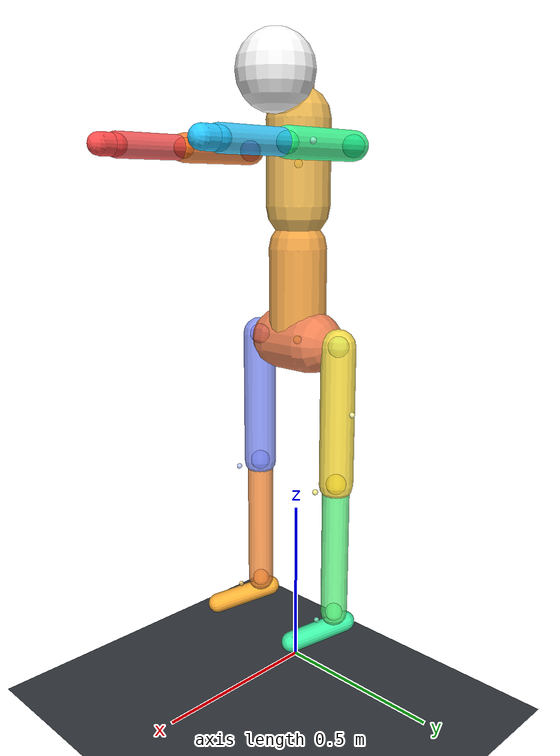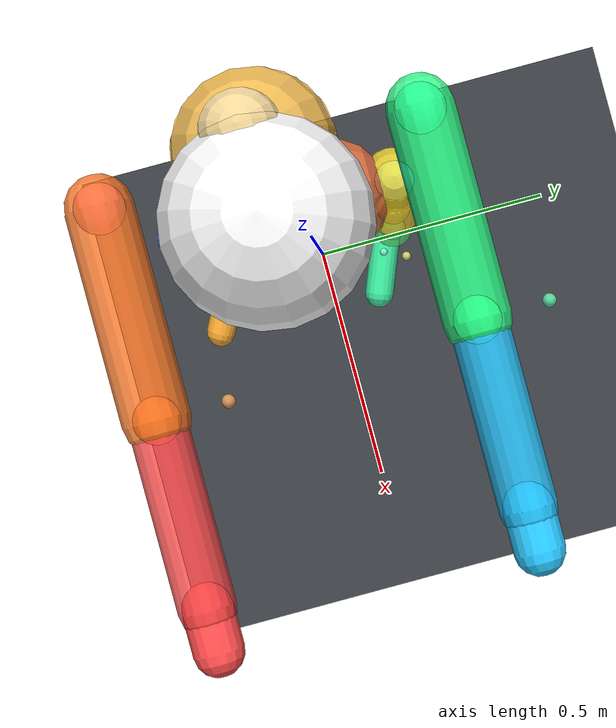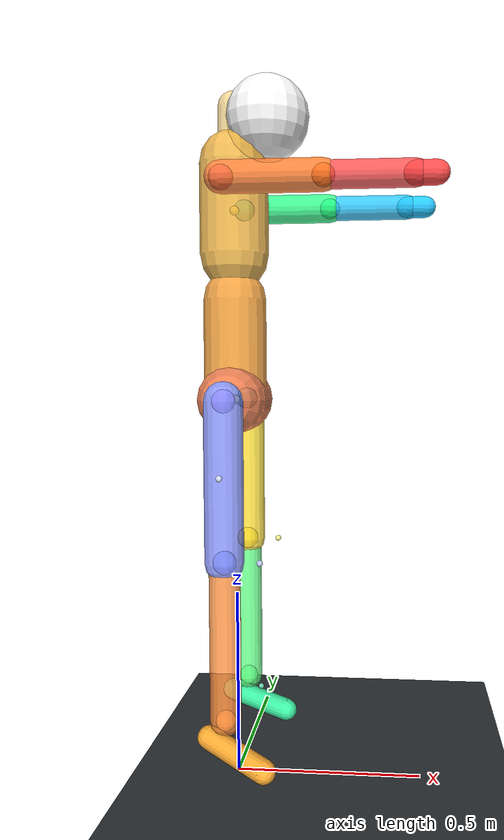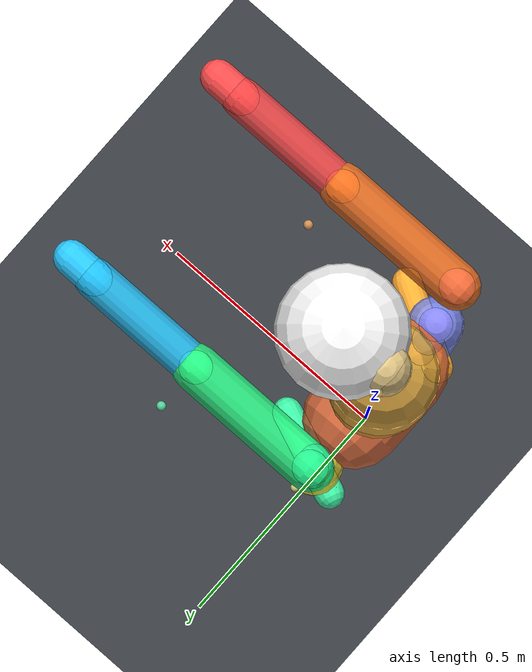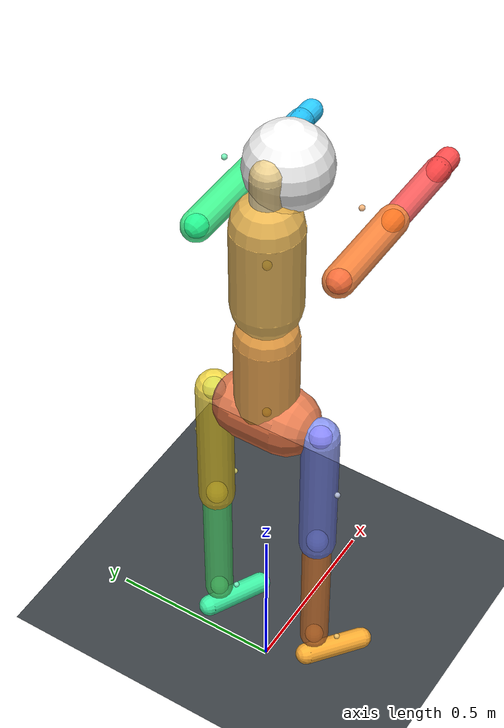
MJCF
<mujoco model="custom_articulated_human">
  <compiler angle="degree" />
  <option timestep="0.005" gravity="0 0 -9.81" integrator="implicitfast" />
  <default>
    <joint limited="true" damping="2" stiffness="0.5" armature="0.01" />
    <geom conaffinity="1" contype="1" friction="0.8 0.1 0.05" density="0" />
    <motor ctrllimited="true" />
    <default class="trunk_joint">
      <joint damping="8" stiffness="2" />
    </default>
    <default class="shoulder_joint">
      <joint damping="3" stiffness="1" />
    </default>
    <default class="hip_joint">
      <joint damping="4" stiffness="1" />
    </default>
    <default class="elbow_joint">
      <joint damping="2" stiffness="0.5" />
    </default>
    <default class="knee_joint">
      <joint damping="3" stiffness="0.5" />
    </default>
    <default class="ankle_joint">
      <joint damping="2.5" stiffness="0.5" />
    </default>
  </default>
  <asset>
    <texture name="grid" type="2d" builtin="checker" width="512" height="512" rgb1="0.15 0.17 0.19" rgb2="0.09 0.10 0.11" />
    <material name="grid" texture="grid" texrepeat="8 8" reflectance="0.05" />
  </asset>
  <worldbody>
    <light pos="0 0 5" dir="0 0 -1" directional="true" />
    <geom name="floor" type="plane" size="5 5 0.1" material="grid" rgba="0.22 0.24 0.26 1" />
    <camera name="overview" pos="3.0 -3.3 2.2" xyaxes="0.73 0.68 0 -0.24 0.25 0.94" />
    <body name="pelvis" pos="0 0 1.03">
      <freejoint name="root" />
      <inertial pos="0.000000 0.000000 0.000000" mass="6.000000" diaginertia="0.058071 0.017000 0.060671" />
      <geom name="pelvis_geom" type="capsule" fromto="0 -0.06 0 0 0.06 0" size="0.09" rgba="0.95 0.48 0.28 0.88" />
      <site name="pelvis_site" pos="0 0 0" size="0.012" rgba="1 0.95 0.30 0.9" />
      <body name="torso_base" pos="0.000000 0.000000 0.029471">
        <joint name="abdomen_z" class="trunk_joint" type="hinge" axis="0 0 1" range="-50 50" />
        <joint name="abdomen_y" class="trunk_joint" type="hinge" axis="0 1 0" range="-80 50" />
        <joint name="abdomen_x" class="trunk_joint" type="hinge" axis="1 0 0" range="-45 45" />
        <inertial pos="0.000000 0.000000 0.103147" mass="9.562500" diaginertia="0.115951 0.094629 0.098459" />
        <geom name="lower_torso_geom" type="capsule" fromto="0.000000 0.000000 -0.029471 0.000000 0.000000 0.235765" size="0.083767" rgba="0.96 0.62 0.20 0.86" />
        <body name="thorax" pos="0.000000 0.000000 0.471529">
          <inertial pos="0.000000 0.000000 0.025050" mass="16.657500" diaginertia="0.265426 0.173793 0.279307" />
          <geom name="thorax_geom" type="capsule" fromto="0.000000 0.000000 -0.117882 0.000000 0.000000 0.117882" size="0.091382" rgba="0.95 0.72 0.28 0.88" />
          <geom name="neck_geom" type="capsule" fromto="0.000000 0.000000 0.117882 0.000000 0.000000 0.265235" size="0.041884" rgba="0.97 0.84 0.54 0.80" />
          <site name="thorax_site" pos="0 0 0" size="0.012" rgba="1 0.95 0.30 0.9" />
          <joint name="neck_z" class="trunk_joint" type="hinge" axis="0 0 1" range="-50 50" />
          <joint name="neck_y" class="trunk_joint" type="hinge" axis="0 1 0" range="-45 45" />
          <joint name="neck_x" class="trunk_joint" type="hinge" axis="1 0 0" range="-45 45" />
          <body name="head" pos="0.090290 0.000000 0.236192">
            <inertial pos="0.000000 0.000000 0.000000" mass="5.205000" diaginertia="0.034700 0.034700 0.034700" />
            <geom name="head_geom" type="sphere" size="0.11" rgba="0.98 0.98 0.98 0.92" />
            <site name="head_site" pos="0 0 0" size="0.012" rgba="1 0.95 0.30 0.9" />
          </body>
          <body name="left_shoulder_mount" pos="-0.010101 0.190380 0.040000">
            <joint name="shoulder_shrug_left" class="shoulder_joint" type="slide" axis="0 0 1" range="0 0.10" />
            <joint name="shoulder1_left" class="shoulder_joint" type="hinge" axis="-2 1 -1" range="-120 120" />
            <joint name="shoulder2_left" class="shoulder_joint" type="hinge" axis="0 -1 -1" range="-120 120" />
            <joint name="shoulder3_left" class="shoulder_joint" type="hinge" axis="1 1 -1" range="-150 150" />
            <inertial pos="0.000000 0.000000 0.030000" mass="0.093750" diaginertia="0.000078 0.000078 0.000056" />
            <geom name="left_shoulder_marker" type="sphere" size="0.03" rgba="0.14 0.92 0.88 0.9" />
            <site name="left_shoulder_site" pos="0 0 0" size="0.010" rgba="0.14 0.92 0.88 0.9" />
            <body name="left_upper_arm" pos="0 0 0">
              <inertial pos="0.124354 0.000000 0.000000" mass="2.032500" diaginertia="0.002168 0.011561 0.011561" />
              <geom name="left_upper_arm_geom" type="capsule" fromto="0.000000 0.000000 0.000000 0.248708 0.000000 0.000000" size="0.04" rgba="0.18 1 0.54 0.85" />
              <body name="left_elbow" pos="0.248708 0.000000 0.000000">
                <joint name="elbow_left" class="elbow_joint" type="hinge" axis="0 -1 -1" range="-175 10" />
                <inertial pos="0.110276 0.000000 0.000000" mass="1.215000" diaginertia="0.000936 0.005393 0.005393" />
                <geom name="left_elbow_marker" type="sphere" size="0.028" rgba="0.18 1 0.54 0.9" />
                <site name="left_elbow_site" pos="0 0 0" size="0.010" rgba="0.18 1 0.54 0.9" />
                <site name="left_elbow_pole_site" pos="0.000000 0.084467 0.000000" size="0.008" rgba="0.40 1 0.72 0.8" />
                <geom name="left_forearm_geom" type="capsule" fromto="0.000000 0.000000 0.000000 0.220552 0.000000 0.000000" size="0.034" rgba="0.16 0.78 1 0.85" />
                <body name="left_hand" pos="0.220552 0.000000 0.000000">
                  <inertial pos="0.025000 0.000000 0.000000" mass="0.457500" diaginertia="0.000275 0.000233 0.000233" />
                  <geom name="left_hand_geom" type="capsule" fromto="0.000000 0.000000 0.000000 0.050000 0.000000 0.000000" size="0.03" rgba="0.16 0.78 1 0.92" />
                  <site name="left_hand_site" pos="0.050000 0.000000 0.000000" size="0.010" rgba="0.16 0.78 1 0.92" />
                </body>
              </body>
            </body>
          </body>
          <body name="right_shoulder_mount" pos="0.005534 -0.190380 0.040000">
            <joint name="shoulder_shrug_right" class="shoulder_joint" type="slide" axis="0 0 1" range="0 0.10" />
            <joint name="shoulder1_right" class="shoulder_joint" type="hinge" axis="2 1 1" range="-120 120" />
            <joint name="shoulder2_right" class="shoulder_joint" type="hinge" axis="0 -1 1" range="-120 120" />
            <joint name="shoulder3_right" class="shoulder_joint" type="hinge" axis="1 -1 -1" range="-150 150" />
            <inertial pos="0.000000 0.000000 0.030000" mass="0.093750" diaginertia="0.000078 0.000078 0.000056" />
            <geom name="right_shoulder_marker" type="sphere" size="0.03" rgba="0.92 0.36 0.88 0.9" />
            <site name="right_shoulder_site" pos="0 0 0" size="0.010" rgba="0.92 0.36 0.88 0.9" />
            <body name="right_upper_arm" pos="0 0 0">
              <inertial pos="0.124354 0.000000 0.000000" mass="2.032500" diaginertia="0.002168 0.011561 0.011561" />
              <geom name="right_upper_arm_geom" type="capsule" fromto="0.000000 0.000000 0.000000 0.248708 0.000000 0.000000" size="0.04" rgba="1 0.48 0.16 0.85" />
              <body name="right_elbow" pos="0.248708 0.000000 0.000000">
                <joint name="elbow_right" class="elbow_joint" type="hinge" axis="0 -1 1" range="-175 10" />
                <inertial pos="0.110276 0.000000 0.000000" mass="1.215000" diaginertia="0.000936 0.005393 0.005393" />
                <geom name="right_elbow_marker" type="sphere" size="0.028" rgba="1 0.48 0.16 0.9" />
                <site name="right_elbow_site" pos="0 0 0" size="0.010" rgba="1 0.48 0.16 0.9" />
                <site name="right_elbow_pole_site" pos="0.000000 0.084467 0.000000" size="0.008" rgba="1 0.68 0.40 0.8" />
                <geom name="right_forearm_geom" type="capsule" fromto="0.000000 0.000000 0.000000 0.220552 0.000000 0.000000" size="0.034" rgba="1 0.30 0.30 0.85" />
                <body name="right_hand" pos="0.220552 0.000000 0.000000">
                  <inertial pos="0.025000 0.000000 0.000000" mass="0.457500" diaginertia="0.000275 0.000233 0.000233" />
                  <geom name="right_hand_geom" type="capsule" fromto="0.000000 0.000000 0.000000 0.050000 0.000000 0.000000" size="0.03" rgba="1 0.30 0.30 0.92" />
                  <site name="right_hand_site" pos="0.050000 0.000000 0.000000" size="0.010" rgba="1 0.30 0.30 0.92" />
                </body>
              </body>
            </body>
          </body>
        </body>
      </body>
      <body name="left_hip_mount" pos="-0.000001 0.159485 -0.000003">
        <joint name="hip_x_left" class="hip_joint" type="hinge" axis="1 0 0" range="-55 45" />
        <joint name="hip_z_left" class="hip_joint" type="hinge" axis="0 0 1" range="-45 45" />
        <joint name="hip_y_left" class="hip_joint" type="hinge" axis="0 1 0" range="-170 45" />
        <inertial pos="0.000000 0.000000 0.000000" mass="0.093750" diaginertia="0.000078 0.000078 0.000056" />
        <geom name="left_hip_marker" type="sphere" size="0.03" rgba="0.28 0.82 1 0.9" />
        <site name="left_hip_site" pos="0 0 0" size="0.010" rgba="0.28 0.82 1 0.9" />
        <body name="left_thigh" pos="0 0 0">
          <inertial pos="0.000000 0.000000 -0.204575" mass="10.620000" diaginertia="0.157002 0.157002 0.017700" />
          <geom name="left_thigh_geom" type="capsule" fromto="0.000000 0.000000 0.000000 0.000000 0.000000 -0.409150" size="0.05" rgba="1 0.88 0.22 0.85" />
          <site name="left_thigh_lateral_site" pos="0.000000 0.055000 -0.188209" size="0.008" rgba="1 0.98 0.56 0.80" />
          <body name="left_knee" pos="0.000000 0.000000 -0.409150">
            <joint name="knee_left" class="knee_joint" type="hinge" axis="0 1 0" range="-170 0" />
            <inertial pos="0.000000 0.000000 -0.205410" mass="3.247500" diaginertia="0.047406 0.047406 0.003464" />
            <geom name="left_knee_marker" type="sphere" size="0.03" rgba="1 0.88 0.22 0.9" />
            <site name="left_knee_site" pos="0 0 0" size="0.010" rgba="1 0.88 0.22 0.9" />
            <site name="left_knee_pole_site" pos="0.090000 0.000000 0.000000" size="0.008" rgba="1 0.96 0.48 0.8" />
            <site name="left_knee_forward_site" pos="0.040 0 0" size="0.007" rgba="1 0.98 0.62 0.72" />
            <geom name="left_shin_geom" type="capsule" fromto="0.000000 0.000000 0.000000 0.000000 0.000000 -0.410820" size="0.04" rgba="0.40 1 0.54 0.85" />
            <body name="left_ankle" pos="0.000000 0.000000 -0.410820">
              <joint name="ankle_y_left" class="ankle_joint" type="hinge" axis="0 1 0" range="-90 120" />
              <joint name="ankle_x_left" class="ankle_joint" type="hinge" axis="-1 0 -0.5" range="-35 35" />
              <inertial pos="0.000000 0.000000 0.000000" mass="0.000001" diaginertia="0.000001 0.000001 0.000001" />
              <geom name="left_ankle_marker" type="sphere" size="0.026" rgba="0.40 1 0.54 0.9" />
              <site name="left_ankle_site" pos="0 0 0" size="0.010" rgba="0.40 1 0.54 0.9" />
              <body name="left_foot" pos="-0.004085 -0.008629 -0.040015">
                <inertial pos="0.040915 -0.019954 -0.022192" mass="1.027500" diaginertia="0.001113 0.003541 0.003267" />
                <geom name="left_foot_geom" type="capsule" fromto="-0.042789 0.013118 -0.007608 0.124618 -0.053025 -0.036776" size="0.03" rgba="0.24 0.94 0.64 0.92" />
                <site name="left_heel_site" pos="-0.042789 0.013118 -0.007608" size="0.008" rgba="0.48 1 0.74 0.82" />
                <site name="left_foot_site" pos="0.124618 -0.053025 -0.036776" size="0.010" rgba="0.24 0.94 0.64 0.92" />
                <site name="left_foot_dorsal_site" pos="0.046865 -0.022305 0.017293" size="0.008" rgba="0.54 1 0.82 0.80" />
              </body>
            </body>
          </body>
        </body>
      </body>
      <body name="right_hip_mount" pos="-0.000001 -0.159485 -0.000003">
        <joint name="hip_x_right" class="hip_joint" type="hinge" axis="1 0 0" range="-55 45" />
        <joint name="hip_z_right" class="hip_joint" type="hinge" axis="0 0 1" range="-45 45" />
        <joint name="hip_y_right" class="hip_joint" type="hinge" axis="0 1 0" range="-170 45" />
        <inertial pos="0.000000 0.000000 0.000000" mass="0.093750" diaginertia="0.000078 0.000078 0.000056" />
        <geom name="right_hip_marker" type="sphere" size="0.03" rgba="0.82 0.46 1 0.9" />
        <site name="right_hip_site" pos="0 0 0" size="0.010" rgba="0.82 0.46 1 0.9" />
        <body name="right_thigh" pos="0 0 0">
          <inertial pos="0.000000 0.000000 -0.204575" mass="10.620000" diaginertia="0.157002 0.157002 0.017700" />
          <geom name="right_thigh_geom" type="capsule" fromto="0.000000 0.000000 0.000000 0.000000 0.000000 -0.409150" size="0.05" rgba="0.52 0.58 1 0.85" />
          <site name="right_thigh_lateral_site" pos="0.000000 -0.055000 -0.188209" size="0.008" rgba="0.82 0.86 1 0.80" />
          <body name="right_knee" pos="0.000000 0.000000 -0.409150">
            <joint name="knee_right" class="knee_joint" type="hinge" axis="0 1 0" range="-170 0" />
            <inertial pos="0.000000 0.000000 -0.205410" mass="3.247500" diaginertia="0.047406 0.047406 0.003464" />
            <geom name="right_knee_marker" type="sphere" size="0.03" rgba="0.52 0.58 1 0.9" />
            <site name="right_knee_site" pos="0 0 0" size="0.010" rgba="0.52 0.58 1 0.9" />
            <site name="right_knee_pole_site" pos="0.090000 0.000000 0.000000" size="0.008" rgba="0.72 0.78 1 0.8" />
            <site name="right_knee_forward_site" pos="0.040 0 0" size="0.007" rgba="0.82 0.88 1 0.72" />
            <geom name="right_shin_geom" type="capsule" fromto="0.000000 0.000000 0.000000 0.000000 0.000000 -0.410820" size="0.04" rgba="1 0.58 0.26 0.85" />
            <body name="right_ankle" pos="0.000000 0.000000 -0.410820">
              <joint name="ankle_y_right" class="ankle_joint" type="hinge" axis="0 1 0" range="-90 120" />
              <joint name="ankle_x_right" class="ankle_joint" type="hinge" axis="1 0 0.5" range="-35 35" />
              <inertial pos="0.000000 0.000000 0.000000" mass="0.000001" diaginertia="0.000001 0.000001 0.000001" />
              <geom name="right_ankle_marker" type="sphere" size="0.026" rgba="1 0.58 0.26 0.9" />
              <site name="right_ankle_site" pos="0 0 0" size="0.010" rgba="1 0.58 0.26 0.9" />
              <body name="right_foot" pos="-0.003822 -0.017089 -0.040230">
                <inertial pos="0.038286 -0.028789 -0.025108" mass="1.027500" diaginertia="0.001113 0.003607 0.003333" />
                <geom name="right_foot_geom" type="capsule" fromto="-0.040040 0.015540 -0.004928 0.116611 -0.073118 -0.045288" size="0.03" rgba="1 0.68 0.20 0.92" />
                <site name="right_heel_site" pos="-0.040040 0.015540 -0.004928" size="0.008" rgba="1 0.80 0.40 0.82" />
                <site name="right_foot_site" pos="0.116611 -0.073118 -0.045288" size="0.010" rgba="1 0.68 0.20 0.92" />
                <site name="right_foot_dorsal_site" pos="0.045902 -0.033099 0.013923" size="0.008" rgba="1 0.82 0.46 0.80" />
              </body>
            </body>
          </body>
        </body>
      </body>
    </body>
  </worldbody>
  <actuator>
    <motor name="abdomen_z_motor" joint="abdomen_z" ctrlrange="-1 1" gear="220" />
    <motor name="abdomen_y_motor" joint="abdomen_y" ctrlrange="-1 1" gear="220" />
    <motor name="abdomen_x_motor" joint="abdomen_x" ctrlrange="-1 1" gear="220" />
    <motor name="neck_z_motor" joint="neck_z" ctrlrange="-1 1" gear="60" />
    <motor name="neck_y_motor" joint="neck_y" ctrlrange="-1 1" gear="60" />
    <motor name="neck_x_motor" joint="neck_x" ctrlrange="-1 1" gear="60" />
    <motor name="shoulder_shrug_left_motor" joint="shoulder_shrug_left" ctrlrange="0 0.10" gear="400" />
    <motor name="shoulder1_left_motor" joint="shoulder1_left" ctrlrange="-2.094 2.094" gear="140" />
    <motor name="shoulder2_left_motor" joint="shoulder2_left" ctrlrange="-2.094 2.094" gear="140" />
    <motor name="shoulder3_left_motor" joint="shoulder3_left" ctrlrange="-2.618 2.618" gear="120" />
    <motor name="elbow_left_motor" joint="elbow_left" ctrlrange="-3.054 0.175" gear="120" />
    <motor name="shoulder_shrug_right_motor" joint="shoulder_shrug_right" ctrlrange="0 0.10" gear="400" />
    <motor name="shoulder1_right_motor" joint="shoulder1_right" ctrlrange="-2.094 2.094" gear="140" />
    <motor name="shoulder2_right_motor" joint="shoulder2_right" ctrlrange="-2.094 2.094" gear="140" />
    <motor name="shoulder3_right_motor" joint="shoulder3_right" ctrlrange="-2.618 2.618" gear="120" />
    <motor name="elbow_right_motor" joint="elbow_right" ctrlrange="-3.054 0.175" gear="120" />
    <motor name="hip_x_left_motor" joint="hip_x_left" ctrlrange="-0.960 0.785" gear="320" />
    <motor name="hip_z_left_motor" joint="hip_z_left" ctrlrange="-1.920 1.396" gear="320" />
    <motor name="hip_y_left_motor" joint="hip_y_left" ctrlrange="-2.967 0.785" gear="420" />
    <motor name="knee_left_motor" joint="knee_left" ctrlrange="-2.967 0.087" gear="360" />
    <motor name="ankle_y_left_motor" joint="ankle_y_left" ctrlrange="-1.571 2.094" gear="180" />
    <motor name="ankle_x_left_motor" joint="ankle_x_left" ctrlrange="-1.047 1.047" gear="160" />
    <motor name="hip_x_right_motor" joint="hip_x_right" ctrlrange="-0.960 0.785" gear="320" />
    <motor name="hip_z_right_motor" joint="hip_z_right" ctrlrange="-1.920 1.396" gear="320" />
    <motor name="hip_y_right_motor" joint="hip_y_right" ctrlrange="-2.967 0.785" gear="420" />
    <motor name="knee_right_motor" joint="knee_right" ctrlrange="-2.967 0.087" gear="360" />
    <motor name="ankle_y_right_motor" joint="ankle_y_right" ctrlrange="-1.571 2.094" gear="180" />
    <motor name="ankle_x_right_motor" joint="ankle_x_right" ctrlrange="-1.047 1.047" gear="160" />
  </actuator>
</mujoco>
